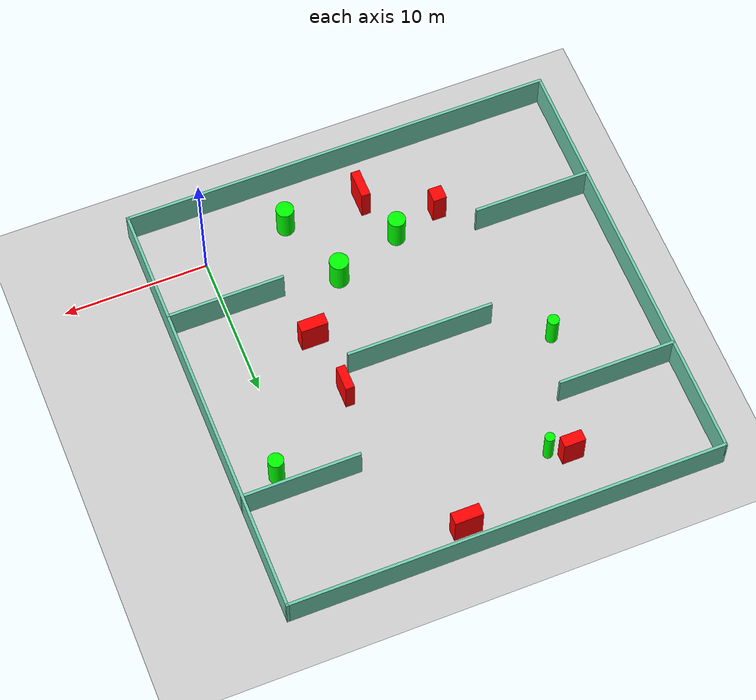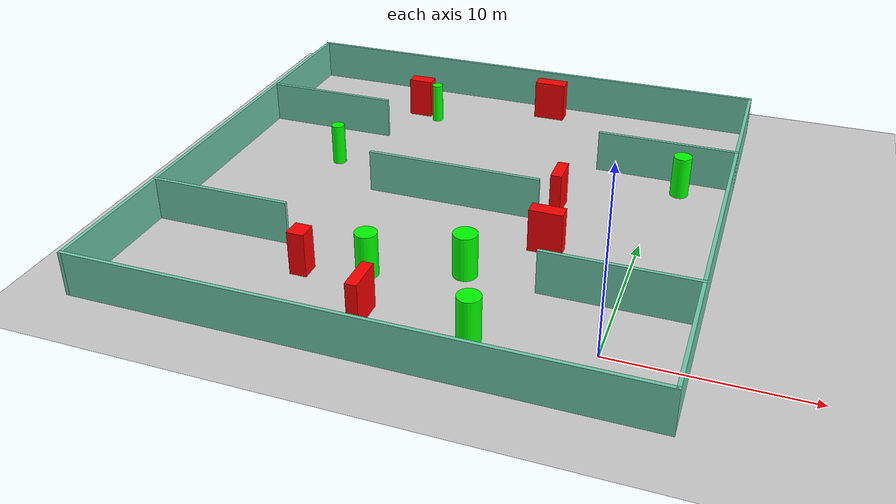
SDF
<sdf version="1.7">
 <world name="default">
  <light name="sun" type="directional">
   <pose>0 0 10 0 -0 0</pose>
   <diffuse>0.8 0.8 0.8 1</diffuse>
   <specular>0.2 0.2 0.2 1</specular>
   <attenuation>
    <range>1000</range>
    <constant>0.9</constant>
    <linear>0.01</linear>
    <quadratic>0.001</quadratic>
   </attenuation>
   <direction>-0.5 0.1 -0.9</direction>
   <spot><inner_angle>0</inner_angle><outer_angle>0</outer_angle><falloff>0</falloff></spot>
  </light>
  <model name="ground_plane">
   <static>1</static>
   <link name="link">
    <collision name="collision">
     <geometry><plane><normal>0 0 1</normal><size>100 100</size></plane></geometry>
     <surface>
      <contact><collide_bitmask>65535</collide_bitmask></contact>
      <friction><ode><mu>100</mu><mu2>50</mu2></ode></friction>
     </surface>
    </collision>
    <visual name="visual">
     <cast_shadows>0</cast_shadows>
     <geometry><plane><normal>0 0 1</normal><size>100 100</size></plane></geometry>
     <material>
      <script><uri>file://media/materials/scripts/gazebo.material</uri><name>Gazebo/Grey</name></script>
     </material>
    </visual>
   </link>
  </model>
  <gravity>0 0 -9.8</gravity>
  <magnetic_field>6e-06 2.3e-05 -4.2e-05</magnetic_field>
  <atmosphere type="adiabatic"/>
  <physics type="ode">
   <max_step_size>0.001</max_step_size>
   <real_time_factor>1</real_time_factor>
   <real_time_update_rate>1000</real_time_update_rate>
  </physics>
  <scene><ambient>0.4 0.4 0.4 1</ambient><background>0.7 0.7 0.7 1</background><shadows>1</shadows></scene>
  <spherical_coordinates>
   <surface_model>EARTH_WGS84</surface_model>
   <latitude_deg>0</latitude_deg>
   <longitude_deg>0</longitude_deg>
   <elevation>0</elevation>
   <heading_deg>0</heading_deg>
  </spherical_coordinates>
  <model name="my_base_walls">
   <link name="Wall_10">
    <collision name="Wall_10_Collision">
     <geometry><box><size>8.2 0.2 2.5</size></box></geometry>
     <pose>0 0 1.25 0 -0 0</pose>
    </collision>
    <visual name="Wall_10_Visual">
     <pose>0 0 1.25 0 -0 0</pose>
     <geometry><box><size>8.2 0.2 2.5</size></box></geometry>
     <material>
      <script><uri>file://media/materials/scripts/gazebo.material</uri><name>Gazebo/Grey</name></script>
      <ambient>0.435294 0.796078 0.67451 1</ambient>
     </material>
     <meta><layer>0</layer></meta>
    </visual>
    <pose>-11 -7 0 0 -0 0</pose>
   </link>
   <link name="Wall_12">
    <collision name="Wall_12_Collision">
     <geometry><box><size>8.2 0.2 2.5</size></box></geometry>
     <pose>0 0 1.25 0 -0 0</pose>
    </collision>
    <visual name="Wall_12_Visual">
     <pose>0 0 1.25 0 -0 0</pose>
     <geometry><box><size>8.2 0.2 2.5</size></box></geometry>
     <material>
      <script><uri>file://media/materials/scripts/gazebo.material</uri><name>Gazebo/Grey</name></script>
      <ambient>0.435294 0.796078 0.67451 1</ambient>
     </material>
     <meta><layer>0</layer></meta>
    </visual>
    <pose>-11 7 0 0 -0 0</pose>
   </link>
   <link name="Wall_14">
    <collision name="Wall_14_Collision">
     <geometry><box><size>8.2 0.2 2.5</size></box></geometry>
     <pose>0 0 1.25 0 -0 0</pose>
    </collision>
    <visual name="Wall_14_Visual">
     <pose>0 0 1.25 0 -0 0</pose>
     <geometry><box><size>8.2 0.2 2.5</size></box></geometry>
     <material>
      <script><uri>file://media/materials/scripts/gazebo.material</uri><name>Gazebo/Grey</name></script>
      <ambient>0.435294 0.796078 0.67451 1</ambient>
     </material>
     <meta><layer>0</layer></meta>
    </visual>
    <pose>11 7 0 0 -0 3.14159</pose>
   </link>
   <link name="Wall_16">
    <collision name="Wall_16_Collision">
     <geometry><box><size>10.2 0.2 2.5</size></box></geometry>
     <pose>0 0 1.25 0 -0 0</pose>
    </collision>
    <visual name="Wall_16_Visual">
     <pose>0 0 1.25 0 -0 0</pose>
     <geometry><box><size>10.2 0.2 2.5</size></box></geometry>
     <material>
      <script><uri>file://media/materials/scripts/gazebo.material</uri><name>Gazebo/Grey</name></script>
      <ambient>0.435294 0.796078 0.67451 1</ambient>
     </material>
     <meta><layer>0</layer></meta>
    </visual>
    <pose>0 0 0 0 -0 3.14159</pose>
   </link>
   <link name="Wall_2">
    <collision name="Wall_2_Collision">
     <geometry><box><size>30.2 0.2 2.5</size></box></geometry>
     <pose>0 0 1.25 0 -0 0</pose>
    </collision>
    <visual name="Wall_2_Visual">
     <pose>0 0 1.25 0 -0 0</pose>
     <geometry><box><size>30.2 0.2 2.5</size></box></geometry>
     <material>
      <script><uri>file://media/materials/scripts/gazebo.material</uri><name>Gazebo/Grey</name></script>
      <ambient>0.435294 0.796078 0.67451 1</ambient>
     </material>
     <meta><layer>0</layer></meta>
    </visual>
    <pose>0 -15 0 0 -0 3.14159</pose>
   </link>
   <link name="Wall_3">
    <collision name="Wall_3_Collision">
     <geometry><box><size>30.2 0.2 2.5</size></box></geometry>
     <pose>0 0 1.25 0 -0 0</pose>
    </collision>
    <visual name="Wall_3_Visual">
     <pose>0 0 1.25 0 -0 0</pose>
     <geometry><box><size>30.2 0.2 2.5</size></box></geometry>
     <material>
      <script><uri>file://media/materials/scripts/gazebo.material</uri><name>Gazebo/Grey</name></script>
      <ambient>0.435294 0.796078 0.67451 1</ambient>
     </material>
     <meta><layer>0</layer></meta>
    </visual>
    <pose>-15 0 0 0 -0 1.5708</pose>
   </link>
   <link name="Wall_4">
    <collision name="Wall_4_Collision">
     <geometry><box><size>30.2 0.2 2.5</size></box></geometry>
     <pose>0 0 1.25 0 -0 0</pose>
    </collision>
    <visual name="Wall_4_Visual">
     <pose>0 0 1.25 0 -0 0</pose>
     <geometry><box><size>30.2 0.2 2.5</size></box></geometry>
     <material>
      <script><uri>file://media/materials/scripts/gazebo.material</uri><name>Gazebo/Grey</name></script>
      <ambient>0.435294 0.796078 0.67451 1</ambient>
     </material>
     <meta><layer>0</layer></meta>
    </visual>
    <pose>0 15 0 0 -0 0</pose>
   </link>
   <link name="Wall_6">
    <collision name="Wall_6_Collision">
     <geometry><box><size>30.2 0.2 2.5</size></box></geometry>
     <pose>0 0 1.25 0 -0 0</pose>
    </collision>
    <visual name="Wall_6_Visual">
     <pose>0 0 1.25 0 -0 0</pose>
     <geometry><box><size>30.2 0.2 2.5</size></box></geometry>
     <material>
      <script><uri>file://media/materials/scripts/gazebo.material</uri><name>Gazebo/Grey</name></script>
      <ambient>0.435294 0.796078 0.67451 1</ambient>
     </material>
     <meta><layer>0</layer></meta>
    </visual>
    <pose>15 0 0 0 -0 1.5708</pose>
   </link>
   <link name="Wall_8">
    <collision name="Wall_8_Collision">
     <geometry><box><size>8.2 0.2 2.5</size></box></geometry>
     <pose>0 0 1.25 0 -0 0</pose>
    </collision>
    <visual name="Wall_8_Visual">
     <pose>0 0 1.25 0 -0 0</pose>
     <geometry><box><size>8.2 0.2 2.5</size></box></geometry>
     <material>
      <script><uri>file://media/materials/scripts/gazebo.material</uri><name>Gazebo/Grey</name></script>
      <ambient>0.435294 0.796078 0.67451 1</ambient>
     </material>
     <meta><layer>0</layer></meta>
    </visual>
    <pose>11 -7 0 0 -0 3.14159</pose>
   </link>
   <static>1</static>
   <pose>-11 11 0 0 -0 0</pose>
  </model>
  <model name="cylinder1">
   <static>1</static>
   <link name="link">
    <inertial>
     <mass>1</mass>
     <inertia><ixx>0.5</ixx><ixy>0</ixy><ixz>0</ixz><iyy>0.5</iyy><iyz>0</iyz><izz>1</izz></inertia>
    </inertial>
    <collision name="collision">
     <geometry><cylinder><radius>0.5297419944875585</radius><length>2.5</length></cylinder></geometry>
    </collision>
    <visual name="visual">
     <geometry><cylinder><radius>0.5297419944875585</radius><length>2.5</length></cylinder></geometry>
     <material>
      <ambient>0 1 0 1</ambient>
      <diffuse>0 1 0 1</diffuse>
      <specular>0.1 0.1 0.1 1</specular>
      <emissive>0 0 0 0</emissive>
     </material>
    </visual>
   </link>
   <pose>1.140792689464707 16.432360353783164 1.25 0 0 0</pose>
  </model>
  <model name="cylinder2">
   <static>1</static>
   <link name="link">
    <inertial>
     <mass>1</mass>
     <inertia><ixx>0.5</ixx><ixy>0</ixy><ixz>0</ixz><iyy>0.5</iyy><iyz>0</iyz><izz>1</izz></inertia>
    </inertial>
    <collision name="collision">
     <geometry><cylinder><radius>0.6127442341772027</radius><length>2.5</length></cylinder></geometry>
    </collision>
    <visual name="visual">
     <geometry><cylinder><radius>0.6127442341772027</radius><length>2.5</length></cylinder></geometry>
     <material>
      <ambient>0 1 0 1</ambient>
      <diffuse>0 1 0 1</diffuse>
      <specular>0.1 0.1 0.1 1</specular>
      <emissive>0 0 0 0</emissive>
     </material>
    </visual>
   </link>
   <pose>-6.0098822109762615 -0.794381245954217 1.25 0 0 0</pose>
  </model>
  <model name="cylinder3">
   <static>1</static>
   <link name="link">
    <inertial>
     <mass>1</mass>
     <inertia><ixx>0.5</ixx><ixy>0</ixy><ixz>0</ixz><iyy>0.5</iyy><iyz>0</iyz><izz>1</izz></inertia>
    </inertial>
    <collision name="collision">
     <geometry><cylinder><radius>0.3347385726892409</radius><length>2.5</length></cylinder></geometry>
    </collision>
    <visual name="visual">
     <geometry><cylinder><radius>0.3347385726892409</radius><length>2.5</length></cylinder></geometry>
     <material>
      <ambient>0 1 0 1</ambient>
      <diffuse>0 1 0 1</diffuse>
      <specular>0.1 0.1 0.1 1</specular>
      <emissive>0 0 0 0</emissive>
     </material>
    </visual>
   </link>
   <pose>-15.758070778254535 21.375217790861477 1.25 0 0 0</pose>
  </model>
  <model name="cylinder4">
   <static>1</static>
   <link name="link">
    <inertial>
     <mass>1</mass>
     <inertia><ixx>0.5</ixx><ixy>0</ixy><ixz>0</ixz><iyy>0.5</iyy><iyz>0</iyz><izz>1</izz></inertia>
    </inertial>
    <collision name="collision">
     <geometry><cylinder><radius>0.6050624820581031</radius><length>2.5</length></cylinder></geometry>
    </collision>
    <visual name="visual">
     <geometry><cylinder><radius>0.6050624820581031</radius><length>2.5</length></cylinder></geometry>
     <material>
      <ambient>0 1 0 1</ambient>
      <diffuse>0 1 0 1</diffuse>
      <specular>0.1 0.1 0.1 1</specular>
      <emissive>0 0 0 0</emissive>
     </material>
    </visual>
   </link>
   <pose>-12.69528659319689 2.684606646832041 1.25 0 0 0</pose>
  </model>
  <model name="cylinder5">
   <static>1</static>
   <link name="link">
    <inertial>
     <mass>1</mass>
     <inertia><ixx>0.5</ixx><ixy>0</ixy><ixz>0</ixz><iyy>0.5</iyy><iyz>0</iyz><izz>1</izz></inertia>
    </inertial>
    <collision name="collision">
     <geometry><cylinder><radius>0.4009225080188557</radius><length>2.5</length></cylinder></geometry>
    </collision>
    <visual name="visual">
     <geometry><cylinder><radius>0.4009225080188557</radius><length>2.5</length></cylinder></geometry>
     <material>
      <ambient>0 1 0 1</ambient>
      <diffuse>0 1 0 1</diffuse>
      <specular>0.1 0.1 0.1 1</specular>
      <emissive>0 0 0 0</emissive>
     </material>
    </visual>
   </link>
   <pose>-19.381032666416097 13.597504642017256 1.25 0 0 0</pose>
  </model>
  <model name="cylinder6">
   <static>1</static>
   <link name="link">
    <inertial>
     <mass>1</mass>
     <inertia><ixx>0.5</ixx><ixy>0</ixy><ixz>0</ixz><iyy>0.5</iyy><iyz>0</iyz><izz>1</izz></inertia>
    </inertial>
    <collision name="collision">
     <geometry><cylinder><radius>0.661021308301601</radius><length>2.5</length></cylinder></geometry>
    </collision>
    <visual name="visual">
     <geometry><cylinder><radius>0.661021308301601</radius><length>2.5</length></cylinder></geometry>
     <material>
      <ambient>0 1 0 1</ambient>
      <diffuse>0 1 0 1</diffuse>
      <specular>0.1 0.1 0.1 1</specular>
      <emissive>0 0 0 0</emissive>
     </material>
    </visual>
   </link>
   <pose>-7.92794447949132 4.2813003200010655 1.25 0 0 0</pose>
  </model>
  <model name="box1">
   <static>1</static>
   <link name="link">
    <inertial>
     <mass>1</mass>
     <inertia><ixx>0.083</ixx><ixy>0</ixy><ixz>0</ixz><iyy>0.083</iyy><iyz>0</iyz><izz>0.083</izz></inertia>
    </inertial>
    <collision name="collision">
     <geometry><box><size>1.9517829333903955 0.8449953361827951 2.5</size></box></geometry>
    </collision>
    <visual name="visual">
     <geometry><box><size>1.9517829333903955 0.8449953361827951 2.5</size></box></geometry>
     <material>
      <ambient>1 0 0 1</ambient>
      <diffuse>1 0 0 1</diffuse>
      <specular>0.1 0.1 0.1 1</specular>
      <emissive>0 0 0 0</emissive>
     </material>
    </visual>
    <sensor name="my_contact" type="contact">
     <contact><collision>box_collision</collision><topic>__default_topic__</topic></contact>
    </sensor>
   </link>
   <pose>-8.752729991499258 24.404046092968226 1.25 0 0 0</pose>
  </model>
  <model name="box2">
   <static>1</static>
   <link name="link">
    <inertial>
     <mass>1</mass>
     <inertia><ixx>0.083</ixx><ixy>0</ixy><ixz>0</ixz><iyy>0.083</iyy><iyz>0</iyz><izz>0.083</izz></inertia>
    </inertial>
    <collision name="collision">
     <geometry><box><size>1.4890952671055109 0.7989323474824325 2.5</size></box></geometry>
    </collision>
    <visual name="visual">
     <geometry><box><size>1.4890952671055109 0.7989323474824325 2.5</size></box></geometry>
     <material>
      <ambient>1 0 0 1</ambient>
      <diffuse>1 0 0 1</diffuse>
      <specular>0.1 0.1 0.1 1</specular>
      <emissive>0 0 0 0</emissive>
     </material>
    </visual>
    <sensor name="my_contact" type="contact">
     <contact><collision>box_collision</collision><topic>__default_topic__</topic></contact>
    </sensor>
   </link>
   <pose>-17.080126840027898 22.017307287334205 1.25 0 0 0</pose>
  </model>
  <model name="box3">
   <static>1</static>
   <link name="link">
    <inertial>
     <mass>1</mass>
     <inertia><ixx>0.083</ixx><ixy>0</ixy><ixz>0</ixz><iyy>0.083</iyy><iyz>0</iyz><izz>0.083</izz></inertia>
    </inertial>
    <collision name="collision">
     <geometry><box><size>0.9448152767312901 1.0267088043684591 2.5</size></box></geometry>
    </collision>
    <visual name="visual">
     <geometry><box><size>0.9448152767312901 1.0267088043684591 2.5</size></box></geometry>
     <material>
      <ambient>1 0 0 1</ambient>
      <diffuse>1 0 0 1</diffuse>
      <specular>0.1 0.1 0.1 1</specular>
      <emissive>0 0 0 0</emissive>
     </material>
    </visual>
    <sensor name="my_contact" type="contact">
     <contact><collision>box_collision</collision><topic>__default_topic__</topic></contact>
    </sensor>
   </link>
   <pose>-15.987252877993892 1.8276402316255655 1.25 0 0 0</pose>
  </model>
  <model name="box4">
   <static>1</static>
   <link name="link">
    <inertial>
     <mass>1</mass>
     <inertia><ixx>0.083</ixx><ixy>0</ixy><ixz>0</ixz><iyy>0.083</iyy><iyz>0</iyz><izz>0.083</izz></inertia>
    </inertial>
    <collision name="collision">
     <geometry><box><size>1.8742101920418137 0.8280720040957656 2.5</size></box></geometry>
    </collision>
    <visual name="visual">
     <geometry><box><size>1.8742101920418137 0.8280720040957656 2.5</size></box></geometry>
     <material>
      <ambient>1 0 0 1</ambient>
      <diffuse>1 0 0 1</diffuse>
      <specular>0.1 0.1 0.1 1</specular>
      <emissive>0 0 0 0</emissive>
     </material>
    </visual>
    <sensor name="my_contact" type="contact">
     <contact><collision>box_collision</collision><topic>__default_topic__</topic></contact>
    </sensor>
   </link>
   <pose>-4.63573262835822 7.978714879259416 1.25 0 0 0</pose>
  </model>
  <model name="box5">
   <static>1</static>
   <link name="link">
    <inertial>
     <mass>1</mass>
     <inertia><ixx>0.083</ixx><ixy>0</ixy><ixz>0</ixz><iyy>0.083</iyy><iyz>0</iyz><izz>0.083</izz></inertia>
    </inertial>
    <collision name="collision">
     <geometry><box><size>0.6252751790781963 2.0103781853389338 2.5</size></box></geometry>
    </collision>
    <visual name="visual">
     <geometry><box><size>0.6252751790781963 2.0103781853389338 2.5</size></box></geometry>
     <material>
      <ambient>1 0 0 1</ambient>
      <diffuse>1 0 0 1</diffuse>
      <specular>0.1 0.1 0.1 1</specular>
      <emissive>0 0 0 0</emissive>
     </material>
    </visual>
    <sensor name="my_contact" type="contact">
     <contact><collision>box_collision</collision><topic>__default_topic__</topic></contact>
    </sensor>
   </link>
   <pose>-11.481711580545259 -0.8134866733661159 1.25 0 0 0</pose>
  </model>
  <model name="box6">
   <static>1</static>
   <link name="link">
    <inertial>
     <mass>1</mass>
     <inertia><ixx>0.083</ixx><ixy>0</ixy><ixz>0</ixz><iyy>0.083</iyy><iyz>0</iyz><izz>0.083</izz></inertia>
    </inertial>
    <collision name="collision">
     <geometry><box><size>0.6243783996401241 1.7282815613227003 2.5</size></box></geometry>
    </collision>
    <visual name="visual">
     <geometry><box><size>0.6243783996401241 1.7282815613227003 2.5</size></box></geometry>
     <material>
      <ambient>1 0 0 1</ambient>
      <diffuse>1 0 0 1</diffuse>
      <specular>0.1 0.1 0.1 1</specular>
      <emissive>0 0 0 0</emissive>
     </material>
    </visual>
    <sensor name="my_contact" type="contact">
     <contact><collision>box_collision</collision><topic>__default_topic__</topic></contact>
    </sensor>
   </link>
   <pose>-5.151958160038216 12.52190335695059 1.25 0 0 0</pose>
  </model>
 </world>
</sdf>
